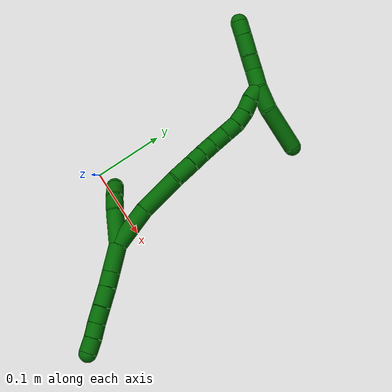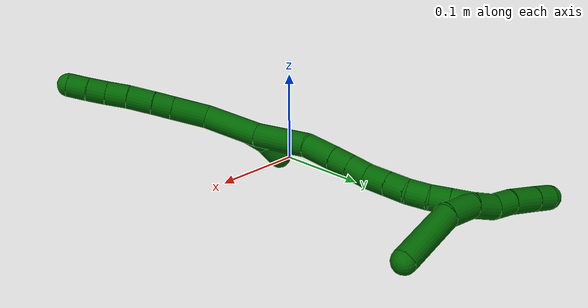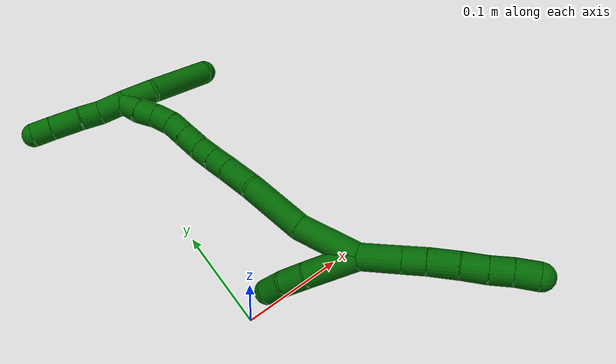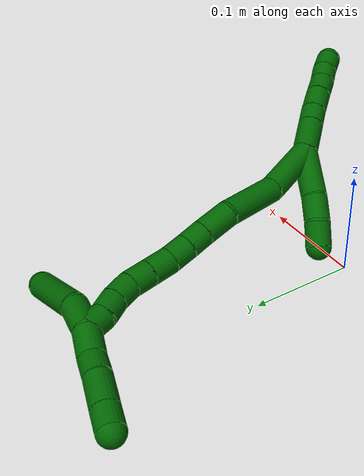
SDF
<sdf version="1.7">
 <world name="default">
  <model name="6">
   <static>0</static>
   <link name="6">
    <collision name="collision-cylinder-e_1_2_8">
     <pose>0.007382 -0.00896 -0.015539 2.61852 0.390406 1.27243</pose>
     <geometry><cylinder><radius>0.0125</radius><length>0.038793</length></cylinder></geometry>
     <surface>
      <friction><ode><mu>1.16</mu><mu2>1.16</mu2><slip1>0</slip1><slip2>0</slip2></ode></friction>
      <contact><ode><kp>1e+06</kp><kd>1</kd><max_vel>0</max_vel><min_depth>0.001</min_depth></ode></contact>
     </surface>
    </collision>
    <visual name="visual-cylinder-e_1_2_8">
     <pose>0.007382 -0.00896 -0.015539 2.61852 0.390406 1.27243</pose>
     <geometry><cylinder><radius>0.0125</radius><length>0.038793</length></cylinder></geometry>
     <material><ambient>0 0.392157 0.003922 1</ambient></material>
    </visual>
    <collision name="collision-cylinder-e_2_8_9">
     <pose>0.018731 -0.022656 -0.039344 2.62137 0.394651 1.28854</pose>
     <geometry><cylinder><radius>0.0125</radius><length>0.020642</length></cylinder></geometry>
     <surface>
      <friction><ode><mu>1.16</mu><mu2>1.16</mu2><slip1>0</slip1><slip2>0</slip2></ode></friction>
      <contact><ode><kp>1e+06</kp><kd>1</kd><max_vel>0</max_vel><min_depth>0.001</min_depth></ode></contact>
     </surface>
    </collision>
    <visual name="visual-cylinder-e_2_8_9">
     <pose>0.018731 -0.022656 -0.039344 2.62137 0.394651 1.28854</pose>
     <geometry><cylinder><radius>0.0125</radius><length>0.020642</length></cylinder></geometry>
     <material><ambient>0 0.392157 0.003922 1</ambient></material>
    </visual>
    <collision name="collision-cylinder-e_3_9_10">
     <pose>0.027416 -0.034093 -0.058172 2.57619 0.36058 1.12076</pose>
     <geometry><cylinder><radius>0.0125</radius><length>0.026734</length></cylinder></geometry>
     <surface>
      <friction><ode><mu>1.16</mu><mu2>1.16</mu2><slip1>0</slip1><slip2>0</slip2></ode></friction>
      <contact><ode><kp>1e+06</kp><kd>1</kd><max_vel>0</max_vel><min_depth>0.001</min_depth></ode></contact>
     </surface>
    </collision>
    <visual name="visual-cylinder-e_3_9_10">
     <pose>0.027416 -0.034093 -0.058172 2.57619 0.36058 1.12076</pose>
     <geometry><cylinder><radius>0.0125</radius><length>0.026734</length></cylinder></geometry>
     <material><ambient>0 0.392157 0.003922 1</ambient></material>
    </visual>
    <collision name="collision-cylinder-e_4_10_11">
     <pose>0.035379 -0.046695 -0.078073 2.57811 0.285854 0.922797</pose>
     <geometry><cylinder><radius>0.0125</radius><length>0.023031</length></cylinder></geometry>
     <surface>
      <friction><ode><mu>1.16</mu><mu2>1.16</mu2><slip1>0</slip1><slip2>0</slip2></ode></friction>
      <contact><ode><kp>1e+06</kp><kd>1</kd><max_vel>0</max_vel><min_depth>0.001</min_depth></ode></contact>
     </surface>
    </collision>
    <visual name="visual-cylinder-e_4_10_11">
     <pose>0.035379 -0.046695 -0.078073 2.57811 0.285854 0.922797</pose>
     <geometry><cylinder><radius>0.0125</radius><length>0.023031</length></cylinder></geometry>
     <material><ambient>0 0.392157 0.003922 1</ambient></material>
    </visual>
    <collision name="collision-cylinder-e_5_11_12">
     <pose>0.041981 -0.057173 -0.095661 2.63504 0.341776 1.17609</pose>
     <geometry><cylinder><radius>0.0125</radius><length>0.020022</length></cylinder></geometry>
     <surface>
      <friction><ode><mu>1.16</mu><mu2>1.16</mu2><slip1>0</slip1><slip2>0</slip2></ode></friction>
      <contact><ode><kp>1e+06</kp><kd>1</kd><max_vel>0</max_vel><min_depth>0.001</min_depth></ode></contact>
     </surface>
    </collision>
    <visual name="visual-cylinder-e_5_11_12">
     <pose>0.041981 -0.057173 -0.095661 2.63504 0.341776 1.17609</pose>
     <geometry><cylinder><radius>0.0125</radius><length>0.020022</length></cylinder></geometry>
     <material><ambient>0 0.392157 0.003922 1</ambient></material>
    </visual>
    <collision name="collision-cylinder-e_6_12_6">
     <pose>0.048645 -0.067359 -0.112002 2.53545 0.324128 0.963514</pose>
     <geometry><cylinder><radius>0.0125</radius><length>0.020778</length></cylinder></geometry>
     <surface>
      <friction><ode><mu>1.16</mu><mu2>1.16</mu2><slip1>0</slip1><slip2>0</slip2></ode></friction>
      <contact><ode><kp>1e+06</kp><kd>1</kd><max_vel>0</max_vel><min_depth>0.001</min_depth></ode></contact>
     </surface>
    </collision>
    <visual name="visual-cylinder-e_6_12_6">
     <pose>0.048645 -0.067359 -0.112002 2.53545 0.324128 0.963514</pose>
     <geometry><cylinder><radius>0.0125</radius><length>0.020778</length></cylinder></geometry>
     <material><ambient>0 0.392157 0.003922 1</ambient></material>
    </visual>
    <collision name="collision-cylinder-e_1_2_13">
     <pose>-0.015109 0.002867 0.020153 -0.141318 -0.638498 0.046783</pose>
     <geometry><cylinder><radius>0.0125</radius><length>0.050701</length></cylinder></geometry>
     <surface>
      <friction><ode><mu>1.16</mu><mu2>1.16</mu2><slip1>0</slip1><slip2>0</slip2></ode></friction>
      <contact><ode><kp>1e+06</kp><kd>1</kd><max_vel>0</max_vel><min_depth>0.001</min_depth></ode></contact>
     </surface>
    </collision>
    <visual name="visual-cylinder-e_1_2_13">
     <pose>-0.015109 0.002867 0.020153 -0.141318 -0.638498 0.046783</pose>
     <geometry><cylinder><radius>0.0125</radius><length>0.050701</length></cylinder></geometry>
     <material><ambient>0 0.392157 0.003922 1</ambient></material>
    </visual>
    <collision name="collision-cylinder-e_2_13_14">
     <pose>-0.039006 0.007537 0.048898 -0.206807 -0.785952 0.085983</pose>
     <geometry><cylinder><radius>0.0125</radius><length>0.024845</length></cylinder></geometry>
     <surface>
      <friction><ode><mu>1.16</mu><mu2>1.16</mu2><slip1>0</slip1><slip2>0</slip2></ode></friction>
      <contact><ode><kp>1e+06</kp><kd>1</kd><max_vel>0</max_vel><min_depth>0.001</min_depth></ode></contact>
     </surface>
    </collision>
    <visual name="visual-cylinder-e_2_13_14">
     <pose>-0.039006 0.007537 0.048898 -0.206807 -0.785952 0.085983</pose>
     <geometry><cylinder><radius>0.0125</radius><length>0.024845</length></cylinder></geometry>
     <material><ambient>0 0.392157 0.003922 1</ambient></material>
    </visual>
    <collision name="collision-cylinder-e_3_14_5">
     <pose>-0.058268 0.011028 0.06357 -0.27091 -1.02859 0.153706</pose>
     <geometry><cylinder><radius>0.0125</radius><length>0.024454</length></cylinder></geometry>
     <surface>
      <friction><ode><mu>1.16</mu><mu2>1.16</mu2><slip1>0</slip1><slip2>0</slip2></ode></friction>
      <contact><ode><kp>1e+06</kp><kd>1</kd><max_vel>0</max_vel><min_depth>0.001</min_depth></ode></contact>
     </surface>
    </collision>
    <visual name="visual-cylinder-e_3_14_5">
     <pose>-0.058268 0.011028 0.06357 -0.27091 -1.02859 0.153706</pose>
     <geometry><cylinder><radius>0.0125</radius><length>0.024454</length></cylinder></geometry>
     <material><ambient>0 0.392157 0.003922 1</ambient></material>
    </visual>
    <collision name="collision-cylinder-e_1_2_15">
     <pose>-0.008386 0.023548 0.017671 -0.927015 -0.277485 0.139365</pose>
     <geometry><cylinder><radius>0.0125</radius><length>0.061224</length></cylinder></geometry>
     <surface>
      <friction><ode><mu>1.16</mu><mu2>1.16</mu2><slip1>0</slip1><slip2>0</slip2></ode></friction>
      <contact><ode><kp>1e+06</kp><kd>1</kd><max_vel>0</max_vel><min_depth>0.001</min_depth></ode></contact>
     </surface>
    </collision>
    <visual name="visual-cylinder-e_1_2_15">
     <pose>-0.008386 0.023548 0.017671 -0.927015 -0.277485 0.139365</pose>
     <geometry><cylinder><radius>0.0125</radius><length>0.061224</length></cylinder></geometry>
     <material><ambient>0 0.392157 0.003922 1</ambient></material>
    </visual>
    <collision name="collision-cylinder-e_2_15_16">
     <pose>-0.017994 0.073276 0.050409 -1.04858 -0.040431 0.023382</pose>
     <geometry><cylinder><radius>0.0125</radius><length>0.060461</length></cylinder></geometry>
     <surface>
      <friction><ode><mu>1.16</mu><mu2>1.16</mu2><slip1>0</slip1><slip2>0</slip2></ode></friction>
      <contact><ode><kp>1e+06</kp><kd>1</kd><max_vel>0</max_vel><min_depth>0.001</min_depth></ode></contact>
     </surface>
    </collision>
    <visual name="visual-cylinder-e_2_15_16">
     <pose>-0.017994 0.073276 0.050409 -1.04858 -0.040431 0.023382</pose>
     <geometry><cylinder><radius>0.0125</radius><length>0.060461</length></cylinder></geometry>
     <material><ambient>0 0.392157 0.003922 1</ambient></material>
    </visual>
    <collision name="collision-cylinder-e_3_16_17">
     <pose>-0.023381 0.113231 0.072123 -1.12123 -0.265906 0.167535</pose>
     <geometry><cylinder><radius>0.0125</radius><length>0.031705</length></cylinder></geometry>
     <surface>
      <friction><ode><mu>1.16</mu><mu2>1.16</mu2><slip1>0</slip1><slip2>0</slip2></ode></friction>
      <contact><ode><kp>1e+06</kp><kd>1</kd><max_vel>0</max_vel><min_depth>0.001</min_depth></ode></contact>
     </surface>
    </collision>
    <visual name="visual-cylinder-e_3_16_17">
     <pose>-0.023381 0.113231 0.072123 -1.12123 -0.265906 0.167535</pose>
     <geometry><cylinder><radius>0.0125</radius><length>0.031705</length></cylinder></geometry>
     <material><ambient>0 0.392157 0.003922 1</ambient></material>
    </visual>
    <collision name="collision-cylinder-e_4_17_18">
     <pose>-0.030497 0.135731 0.083077 -1.11223 -0.294366 0.183777</pose>
     <geometry><cylinder><radius>0.0125</radius><length>0.020333</length></cylinder></geometry>
     <surface>
      <friction><ode><mu>1.16</mu><mu2>1.16</mu2><slip1>0</slip1><slip2>0</slip2></ode></friction>
      <contact><ode><kp>1e+06</kp><kd>1</kd><max_vel>0</max_vel><min_depth>0.001</min_depth></ode></contact>
     </surface>
    </collision>
    <visual name="visual-cylinder-e_4_17_18">
     <pose>-0.030497 0.135731 0.083077 -1.11223 -0.294366 0.183777</pose>
     <geometry><cylinder><radius>0.0125</radius><length>0.020333</length></cylinder></geometry>
     <material><ambient>0 0.392157 0.003922 1</ambient></material>
    </visual>
    <collision name="collision-cylinder-e_5_18_19">
     <pose>-0.036416 0.153519 0.091572 -1.13791 -0.289087 0.185633</pose>
     <geometry><cylinder><radius>0.0125</radius><length>0.020836</length></cylinder></geometry>
     <surface>
      <friction><ode><mu>1.16</mu><mu2>1.16</mu2><slip1>0</slip1><slip2>0</slip2></ode></friction>
      <contact><ode><kp>1e+06</kp><kd>1</kd><max_vel>0</max_vel><min_depth>0.001</min_depth></ode></contact>
     </surface>
    </collision>
    <visual name="visual-cylinder-e_5_18_19">
     <pose>-0.036416 0.153519 0.091572 -1.13791 -0.289087 0.185633</pose>
     <geometry><cylinder><radius>0.0125</radius><length>0.020836</length></cylinder></geometry>
     <material><ambient>0 0.392157 0.003922 1</ambient></material>
    </visual>
    <collision name="collision-cylinder-e_6_19_20">
     <pose>-0.041118 0.173053 0.100647 -1.13416 -0.148809 0.094874</pose>
     <geometry><cylinder><radius>0.0125</radius><length>0.023364</length></cylinder></geometry>
     <surface>
      <friction><ode><mu>1.16</mu><mu2>1.16</mu2><slip1>0</slip1><slip2>0</slip2></ode></friction>
      <contact><ode><kp>1e+06</kp><kd>1</kd><max_vel>0</max_vel><min_depth>0.001</min_depth></ode></contact>
     </surface>
    </collision>
    <visual name="visual-cylinder-e_6_19_20">
     <pose>-0.041118 0.173053 0.100647 -1.13416 -0.148809 0.094874</pose>
     <geometry><cylinder><radius>0.0125</radius><length>0.023364</length></cylinder></geometry>
     <material><ambient>0 0.392157 0.003922 1</ambient></material>
    </visual>
    <collision name="collision-cylinder-e_7_20_21">
     <pose>-0.04439 0.192973 0.109917 -1.13647 -0.146728 0.093782</pose>
     <geometry><cylinder><radius>0.0125</radius><length>0.021064</length></cylinder></geometry>
     <surface>
      <friction><ode><mu>1.16</mu><mu2>1.16</mu2><slip1>0</slip1><slip2>0</slip2></ode></friction>
      <contact><ode><kp>1e+06</kp><kd>1</kd><max_vel>0</max_vel><min_depth>0.001</min_depth></ode></contact>
     </surface>
    </collision>
    <visual name="visual-cylinder-e_7_20_21">
     <pose>-0.04439 0.192973 0.109917 -1.13647 -0.146728 0.093782</pose>
     <geometry><cylinder><radius>0.0125</radius><length>0.021064</length></cylinder></geometry>
     <material><ambient>0 0.392157 0.003922 1</ambient></material>
    </visual>
    <collision name="collision-cylinder-e_8_21_22">
     <pose>-0.047967 0.210316 0.120625 -0.89518 -0.198807 0.095687</pose>
     <geometry><cylinder><radius>0.0125</radius><length>0.020631</length></cylinder></geometry>
     <surface>
      <friction><ode><mu>1.16</mu><mu2>1.16</mu2><slip1>0</slip1><slip2>0</slip2></ode></friction>
      <contact><ode><kp>1e+06</kp><kd>1</kd><max_vel>0</max_vel><min_depth>0.001</min_depth></ode></contact>
     </surface>
    </collision>
    <visual name="visual-cylinder-e_8_21_22">
     <pose>-0.047967 0.210316 0.120625 -0.89518 -0.198807 0.095687</pose>
     <geometry><cylinder><radius>0.0125</radius><length>0.020631</length></cylinder></geometry>
     <material><ambient>0 0.392157 0.003922 1</ambient></material>
    </visual>
    <collision name="collision-cylinder-e_9_22_23">
     <pose>-0.052189 0.224544 0.134528 -0.696409 -0.217656 0.07928</pose>
     <geometry><cylinder><radius>0.0125</radius><length>0.020236</length></cylinder></geometry>
     <surface>
      <friction><ode><mu>1.16</mu><mu2>1.16</mu2><slip1>0</slip1><slip2>0</slip2></ode></friction>
      <contact><ode><kp>1e+06</kp><kd>1</kd><max_vel>0</max_vel><min_depth>0.001</min_depth></ode></contact>
     </surface>
    </collision>
    <visual name="visual-cylinder-e_9_22_23">
     <pose>-0.052189 0.224544 0.134528 -0.696409 -0.217656 0.07928</pose>
     <geometry><cylinder><radius>0.0125</radius><length>0.020236</length></cylinder></geometry>
     <material><ambient>0 0.392157 0.003922 1</ambient></material>
    </visual>
    <collision name="collision-cylinder-e_10_23_1">
     <pose>-0.055403 0.238705 0.148368 -0.895898 -0.102303 0.049193</pose>
     <geometry><cylinder><radius>0.0125</radius><length>0.020146</length></cylinder></geometry>
     <surface>
      <friction><ode><mu>1.16</mu><mu2>1.16</mu2><slip1>0</slip1><slip2>0</slip2></ode></friction>
      <contact><ode><kp>1e+06</kp><kd>1</kd><max_vel>0</max_vel><min_depth>0.001</min_depth></ode></contact>
     </surface>
    </collision>
    <visual name="visual-cylinder-e_10_23_1">
     <pose>-0.055403 0.238705 0.148368 -0.895898 -0.102303 0.049193</pose>
     <geometry><cylinder><radius>0.0125</radius><length>0.020146</length></cylinder></geometry>
     <material><ambient>0 0.392157 0.003922 1</ambient></material>
    </visual>
    <collision name="collision-cylinder-e_1_1_24">
     <pose>-0.062208 0.246705 0.16681 -0.014511 -0.442791 0.003266</pose>
     <geometry><cylinder><radius>0.0125</radius><length>0.026965</length></cylinder></geometry>
     <surface>
      <friction><ode><mu>1.16</mu><mu2>1.16</mu2><slip1>0</slip1><slip2>0</slip2></ode></friction>
      <contact><ode><kp>1e+06</kp><kd>1</kd><max_vel>0</max_vel><min_depth>0.001</min_depth></ode></contact>
     </surface>
    </collision>
    <visual name="visual-cylinder-e_1_1_24">
     <pose>-0.062208 0.246705 0.16681 -0.014511 -0.442791 0.003266</pose>
     <geometry><cylinder><radius>0.0125</radius><length>0.026965</length></cylinder></geometry>
     <material><ambient>0 0.392157 0.003922 1</ambient></material>
    </visual>
    <collision name="collision-cylinder-e_2_24_25">
     <pose>-0.069678 0.246458 0.189595 0.039962 -0.158166 -0.003167</pose>
     <geometry><cylinder><radius>0.0125</radius><length>0.021493</length></cylinder></geometry>
     <surface>
      <friction><ode><mu>1.16</mu><mu2>1.16</mu2><slip1>0</slip1><slip2>0</slip2></ode></friction>
      <contact><ode><kp>1e+06</kp><kd>1</kd><max_vel>0</max_vel><min_depth>0.001</min_depth></ode></contact>
     </surface>
    </collision>
    <visual name="visual-cylinder-e_2_24_25">
     <pose>-0.069678 0.246458 0.189595 0.039962 -0.158166 -0.003167</pose>
     <geometry><cylinder><radius>0.0125</radius><length>0.021493</length></cylinder></geometry>
     <material><ambient>0 0.392157 0.003922 1</ambient></material>
    </visual>
    <collision name="collision-cylinder-e_3_25_26">
     <pose>-0.075597 0.245931 0.214927 0.006992 -0.279464 -0.000983</pose>
     <geometry><cylinder><radius>0.0125</radius><length>0.030646</length></cylinder></geometry>
     <surface>
      <friction><ode><mu>1.16</mu><mu2>1.16</mu2><slip1>0</slip1><slip2>0</slip2></ode></friction>
      <contact><ode><kp>1e+06</kp><kd>1</kd><max_vel>0</max_vel><min_depth>0.001</min_depth></ode></contact>
     </surface>
    </collision>
    <visual name="visual-cylinder-e_3_25_26">
     <pose>-0.075597 0.245931 0.214927 0.006992 -0.279464 -0.000983</pose>
     <geometry><cylinder><radius>0.0125</radius><length>0.030646</length></cylinder></geometry>
     <material><ambient>0 0.392157 0.003922 1</ambient></material>
    </visual>
    <collision name="collision-cylinder-e_4_26_4">
     <pose>-0.08292 0.245625 0.239631 0.02037 -0.300849 -0.003088</pose>
     <geometry><cylinder><radius>0.0125</radius><length>0.020896</length></cylinder></geometry>
     <surface>
      <friction><ode><mu>1.16</mu><mu2>1.16</mu2><slip1>0</slip1><slip2>0</slip2></ode></friction>
      <contact><ode><kp>1e+06</kp><kd>1</kd><max_vel>0</max_vel><min_depth>0.001</min_depth></ode></contact>
     </surface>
    </collision>
    <visual name="visual-cylinder-e_4_26_4">
     <pose>-0.08292 0.245625 0.239631 0.02037 -0.300849 -0.003088</pose>
     <geometry><cylinder><radius>0.0125</radius><length>0.020896</length></cylinder></geometry>
     <material><ambient>0 0.392157 0.003922 1</ambient></material>
    </visual>
    <collision name="collision-cylinder-e_1_1_27">
     <pose>-0.054192 0.249075 0.138698 -2.98306 0.137946 -1.43167</pose>
     <geometry><cylinder><radius>0.0125</radius><length>0.032576</length></cylinder></geometry>
     <surface>
      <friction><ode><mu>1.16</mu><mu2>1.16</mu2><slip1>0</slip1><slip2>0</slip2></ode></friction>
      <contact><ode><kp>1e+06</kp><kd>1</kd><max_vel>0</max_vel><min_depth>0.001</min_depth></ode></contact>
     </surface>
    </collision>
    <visual name="visual-cylinder-e_1_1_27">
     <pose>-0.054192 0.249075 0.138698 -2.98306 0.137946 -1.43167</pose>
     <geometry><cylinder><radius>0.0125</radius><length>0.032576</length></cylinder></geometry>
     <material><ambient>0 0.392157 0.003922 1</ambient></material>
    </visual>
    <collision name="collision-cylinder-e_2_27_3">
     <pose>-0.057288 0.262509 0.09131 -2.8084 -0.158956 0.884692</pose>
     <geometry><cylinder><radius>0.0125</radius><length>0.067424</length></cylinder></geometry>
     <surface>
      <friction><ode><mu>1.16</mu><mu2>1.16</mu2><slip1>0</slip1><slip2>0</slip2></ode></friction>
      <contact><ode><kp>1e+06</kp><kd>1</kd><max_vel>0</max_vel><min_depth>0.001</min_depth></ode></contact>
     </surface>
    </collision>
    <visual name="visual-cylinder-e_2_27_3">
     <pose>-0.057288 0.262509 0.09131 -2.8084 -0.158956 0.884692</pose>
     <geometry><cylinder><radius>0.0125</radius><length>0.067424</length></cylinder></geometry>
     <material><ambient>0 0.392157 0.003922 1</ambient></material>
    </visual>
    <collision name="collision-sphere-3">
     <pose>-0.062624 0.273396 0.059854 0 -0 0</pose>
     <geometry><sphere><radius>0.0125</radius></sphere></geometry>
     <surface>
      <friction><ode><mu>1.16</mu><mu2>1.16</mu2><slip1>0</slip1><slip2>0</slip2></ode></friction>
      <contact><ode><kp>1e+06</kp><kd>1</kd><max_vel>0</max_vel><min_depth>0.001</min_depth></ode></contact>
     </surface>
    </collision>
    <visual name="visual-sphere-3">
     <pose>-0.062624 0.273396 0.059854 0 -0 0</pose>
     <geometry><sphere><radius>0.0125</radius></sphere></geometry>
     <material><ambient>0 0.392157 0.003922 1</ambient></material>
    </visual>
    <collision name="collision-sphere-27">
     <pose>-0.051952 0.251622 0.122767 0 -0 0</pose>
     <geometry><sphere><radius>0.0125</radius></sphere></geometry>
     <surface>
      <friction><ode><mu>1.16</mu><mu2>1.16</mu2><slip1>0</slip1><slip2>0</slip2></ode></friction>
      <contact><ode><kp>1e+06</kp><kd>1</kd><max_vel>0</max_vel><min_depth>0.001</min_depth></ode></contact>
     </surface>
    </collision>
    <visual name="visual-sphere-27">
     <pose>-0.051952 0.251622 0.122767 0 -0 0</pose>
     <geometry><sphere><radius>0.0125</radius></sphere></geometry>
     <material><ambient>0 0.392157 0.003922 1</ambient></material>
    </visual>
    <collision name="collision-sphere-4">
     <pose>-0.086016 0.245421 0.249608 0 -0 0</pose>
     <geometry><sphere><radius>0.0125</radius></sphere></geometry>
     <surface>
      <friction><ode><mu>1.16</mu><mu2>1.16</mu2><slip1>0</slip1><slip2>0</slip2></ode></friction>
      <contact><ode><kp>1e+06</kp><kd>1</kd><max_vel>0</max_vel><min_depth>0.001</min_depth></ode></contact>
     </surface>
    </collision>
    <visual name="visual-sphere-4">
     <pose>-0.086016 0.245421 0.249608 0 -0 0</pose>
     <geometry><sphere><radius>0.0125</radius></sphere></geometry>
     <material><ambient>0 0.392157 0.003922 1</ambient></material>
    </visual>
    <collision name="collision-sphere-26">
     <pose>-0.079824 0.245828 0.229655 0 -0 0</pose>
     <geometry><sphere><radius>0.0125</radius></sphere></geometry>
     <surface>
      <friction><ode><mu>1.16</mu><mu2>1.16</mu2><slip1>0</slip1><slip2>0</slip2></ode></friction>
      <contact><ode><kp>1e+06</kp><kd>1</kd><max_vel>0</max_vel><min_depth>0.001</min_depth></ode></contact>
     </surface>
    </collision>
    <visual name="visual-sphere-26">
     <pose>-0.079824 0.245828 0.229655 0 -0 0</pose>
     <geometry><sphere><radius>0.0125</radius></sphere></geometry>
     <material><ambient>0 0.392157 0.003922 1</ambient></material>
    </visual>
    <collision name="collision-sphere-25">
     <pose>-0.071371 0.246034 0.200199 0 -0 0</pose>
     <geometry><sphere><radius>0.0125</radius></sphere></geometry>
     <surface>
      <friction><ode><mu>1.16</mu><mu2>1.16</mu2><slip1>0</slip1><slip2>0</slip2></ode></friction>
      <contact><ode><kp>1e+06</kp><kd>1</kd><max_vel>0</max_vel><min_depth>0.001</min_depth></ode></contact>
     </surface>
    </collision>
    <visual name="visual-sphere-25">
     <pose>-0.071371 0.246034 0.200199 0 -0 0</pose>
     <geometry><sphere><radius>0.0125</radius></sphere></geometry>
     <material><ambient>0 0.392157 0.003922 1</ambient></material>
    </visual>
    <collision name="collision-sphere-24">
     <pose>-0.067985 0.246882 0.178991 0 -0 0</pose>
     <geometry><sphere><radius>0.0125</radius></sphere></geometry>
     <surface>
      <friction><ode><mu>1.16</mu><mu2>1.16</mu2><slip1>0</slip1><slip2>0</slip2></ode></friction>
      <contact><ode><kp>1e+06</kp><kd>1</kd><max_vel>0</max_vel><min_depth>0.001</min_depth></ode></contact>
     </surface>
    </collision>
    <visual name="visual-sphere-24">
     <pose>-0.067985 0.246882 0.178991 0 -0 0</pose>
     <geometry><sphere><radius>0.0125</radius></sphere></geometry>
     <material><ambient>0 0.392157 0.003922 1</ambient></material>
    </visual>
    <collision name="collision-sphere-1">
     <pose>-0.056432 0.246528 0.154629 0 -0 0</pose>
     <geometry><sphere><radius>0.0125</radius></sphere></geometry>
     <surface>
      <friction><ode><mu>1.16</mu><mu2>1.16</mu2><slip1>0</slip1><slip2>0</slip2></ode></friction>
      <contact><ode><kp>1e+06</kp><kd>1</kd><max_vel>0</max_vel><min_depth>0.001</min_depth></ode></contact>
     </surface>
    </collision>
    <visual name="visual-sphere-1">
     <pose>-0.056432 0.246528 0.154629 0 -0 0</pose>
     <geometry><sphere><radius>0.0125</radius></sphere></geometry>
     <material><ambient>0 0.392157 0.003922 1</ambient></material>
    </visual>
    <collision name="collision-sphere-23">
     <pose>-0.054374 0.230881 0.142107 0 -0 0</pose>
     <geometry><sphere><radius>0.0125</radius></sphere></geometry>
     <surface>
      <friction><ode><mu>1.16</mu><mu2>1.16</mu2><slip1>0</slip1><slip2>0</slip2></ode></friction>
      <contact><ode><kp>1e+06</kp><kd>1</kd><max_vel>0</max_vel><min_depth>0.001</min_depth></ode></contact>
     </surface>
    </collision>
    <visual name="visual-sphere-23">
     <pose>-0.054374 0.230881 0.142107 0 -0 0</pose>
     <geometry><sphere><radius>0.0125</radius></sphere></geometry>
     <material><ambient>0 0.392157 0.003922 1</ambient></material>
    </visual>
    <collision name="collision-sphere-22">
     <pose>-0.050004 0.218207 0.126949 0 -0 0</pose>
     <geometry><sphere><radius>0.0125</radius></sphere></geometry>
     <surface>
      <friction><ode><mu>1.16</mu><mu2>1.16</mu2><slip1>0</slip1><slip2>0</slip2></ode></friction>
      <contact><ode><kp>1e+06</kp><kd>1</kd><max_vel>0</max_vel><min_depth>0.001</min_depth></ode></contact>
     </surface>
    </collision>
    <visual name="visual-sphere-22">
     <pose>-0.050004 0.218207 0.126949 0 -0 0</pose>
     <geometry><sphere><radius>0.0125</radius></sphere></geometry>
     <material><ambient>0 0.392157 0.003922 1</ambient></material>
    </visual>
    <collision name="collision-sphere-21">
     <pose>-0.04593 0.202425 0.114301 0 -0 0</pose>
     <geometry><sphere><radius>0.0125</radius></sphere></geometry>
     <surface>
      <friction><ode><mu>1.16</mu><mu2>1.16</mu2><slip1>0</slip1><slip2>0</slip2></ode></friction>
      <contact><ode><kp>1e+06</kp><kd>1</kd><max_vel>0</max_vel><min_depth>0.001</min_depth></ode></contact>
     </surface>
    </collision>
    <visual name="visual-sphere-21">
     <pose>-0.04593 0.202425 0.114301 0 -0 0</pose>
     <geometry><sphere><radius>0.0125</radius></sphere></geometry>
     <material><ambient>0 0.392157 0.003922 1</ambient></material>
    </visual>
    <collision name="collision-sphere-12">
     <pose>0.045337 -0.061749 -0.103909 0 -0 0</pose>
     <geometry><sphere><radius>0.0125</radius></sphere></geometry>
     <surface>
      <friction><ode><mu>1.16</mu><mu2>1.16</mu2><slip1>0</slip1><slip2>0</slip2></ode></friction>
      <contact><ode><kp>1e+06</kp><kd>1</kd><max_vel>0</max_vel><min_depth>0.001</min_depth></ode></contact>
     </surface>
    </collision>
    <visual name="visual-sphere-12">
     <pose>0.045337 -0.061749 -0.103909 0 -0 0</pose>
     <geometry><sphere><radius>0.0125</radius></sphere></geometry>
     <material><ambient>0 0.392157 0.003922 1</ambient></material>
    </visual>
    <collision name="collision-sphere-11">
     <pose>0.038626 -0.052597 -0.087414 0 -0 0</pose>
     <geometry><sphere><radius>0.0125</radius></sphere></geometry>
     <surface>
      <friction><ode><mu>1.16</mu><mu2>1.16</mu2><slip1>0</slip1><slip2>0</slip2></ode></friction>
      <contact><ode><kp>1e+06</kp><kd>1</kd><max_vel>0</max_vel><min_depth>0.001</min_depth></ode></contact>
     </surface>
    </collision>
    <visual name="visual-sphere-11">
     <pose>0.038626 -0.052597 -0.087414 0 -0 0</pose>
     <geometry><sphere><radius>0.0125</radius></sphere></geometry>
     <material><ambient>0 0.392157 0.003922 1</ambient></material>
    </visual>
    <collision name="collision-sphere-10">
     <pose>0.032132 -0.040794 -0.068733 0 -0 0</pose>
     <geometry><sphere><radius>0.0125</radius></sphere></geometry>
     <surface>
      <friction><ode><mu>1.16</mu><mu2>1.16</mu2><slip1>0</slip1><slip2>0</slip2></ode></friction>
      <contact><ode><kp>1e+06</kp><kd>1</kd><max_vel>0</max_vel><min_depth>0.001</min_depth></ode></contact>
     </surface>
    </collision>
    <visual name="visual-sphere-10">
     <pose>0.032132 -0.040794 -0.068733 0 -0 0</pose>
     <geometry><sphere><radius>0.0125</radius></sphere></geometry>
     <material><ambient>0 0.392157 0.003922 1</ambient></material>
    </visual>
    <collision name="collision-sphere-9">
     <pose>0.0227 -0.027392 -0.047611 0 -0 0</pose>
     <geometry><sphere><radius>0.0125</radius></sphere></geometry>
     <surface>
      <friction><ode><mu>1.16</mu><mu2>1.16</mu2><slip1>0</slip1><slip2>0</slip2></ode></friction>
      <contact><ode><kp>1e+06</kp><kd>1</kd><max_vel>0</max_vel><min_depth>0.001</min_depth></ode></contact>
     </surface>
    </collision>
    <visual name="visual-sphere-9">
     <pose>0.0227 -0.027392 -0.047611 0 -0 0</pose>
     <geometry><sphere><radius>0.0125</radius></sphere></geometry>
     <material><ambient>0 0.392157 0.003922 1</ambient></material>
    </visual>
    <collision name="collision-sphere-2">
     <geometry><sphere><radius>0.0125</radius></sphere></geometry>
     <surface>
      <friction><ode><mu>1.16</mu><mu2>1.16</mu2><slip1>0</slip1><slip2>0</slip2></ode></friction>
      <contact><ode><kp>1e+06</kp><kd>1</kd><max_vel>0</max_vel><min_depth>0.001</min_depth></ode></contact>
     </surface>
    </collision>
    <visual name="visual-sphere-2">
     <geometry><sphere><radius>0.0125</radius></sphere></geometry>
     <material><ambient>0 0.392157 0.003922 1</ambient></material>
    </visual>
    <collision name="collision-sphere-19">
     <pose>-0.039386 0.162584 0.095761 0 -0 0</pose>
     <geometry><sphere><radius>0.0125</radius></sphere></geometry>
     <surface>
      <friction><ode><mu>1.16</mu><mu2>1.16</mu2><slip1>0</slip1><slip2>0</slip2></ode></friction>
      <contact><ode><kp>1e+06</kp><kd>1</kd><max_vel>0</max_vel><min_depth>0.001</min_depth></ode></contact>
     </surface>
    </collision>
    <visual name="visual-sphere-19">
     <pose>-0.039386 0.162584 0.095761 0 -0 0</pose>
     <geometry><sphere><radius>0.0125</radius></sphere></geometry>
     <material><ambient>0 0.392157 0.003922 1</ambient></material>
    </visual>
    <collision name="collision-sphere-8">
     <pose>0.014763 -0.017921 -0.031077 0 -0 0</pose>
     <geometry><sphere><radius>0.0125</radius></sphere></geometry>
     <surface>
      <friction><ode><mu>1.16</mu><mu2>1.16</mu2><slip1>0</slip1><slip2>0</slip2></ode></friction>
      <contact><ode><kp>1e+06</kp><kd>1</kd><max_vel>0</max_vel><min_depth>0.001</min_depth></ode></contact>
     </surface>
    </collision>
    <visual name="visual-sphere-8">
     <pose>0.014763 -0.017921 -0.031077 0 -0 0</pose>
     <geometry><sphere><radius>0.0125</radius></sphere></geometry>
     <material><ambient>0 0.392157 0.003922 1</ambient></material>
    </visual>
    <collision name="collision-sphere-6">
     <pose>0.051954 -0.07297 -0.120096 0 -0 0</pose>
     <geometry><sphere><radius>0.0125</radius></sphere></geometry>
     <surface>
      <friction><ode><mu>1.16</mu><mu2>1.16</mu2><slip1>0</slip1><slip2>0</slip2></ode></friction>
      <contact><ode><kp>1e+06</kp><kd>1</kd><max_vel>0</max_vel><min_depth>0.001</min_depth></ode></contact>
     </surface>
    </collision>
    <visual name="visual-sphere-6">
     <pose>0.051954 -0.07297 -0.120096 0 -0 0</pose>
     <geometry><sphere><radius>0.0125</radius></sphere></geometry>
     <material><ambient>0 0.392157 0.003922 1</ambient></material>
    </visual>
    <collision name="collision-sphere-13">
     <pose>-0.030217 0.005734 0.040306 0 -0 0</pose>
     <geometry><sphere><radius>0.0125</radius></sphere></geometry>
     <surface>
      <friction><ode><mu>1.16</mu><mu2>1.16</mu2><slip1>0</slip1><slip2>0</slip2></ode></friction>
      <contact><ode><kp>1e+06</kp><kd>1</kd><max_vel>0</max_vel><min_depth>0.001</min_depth></ode></contact>
     </surface>
    </collision>
    <visual name="visual-sphere-13">
     <pose>-0.030217 0.005734 0.040306 0 -0 0</pose>
     <geometry><sphere><radius>0.0125</radius></sphere></geometry>
     <material><ambient>0 0.392157 0.003922 1</ambient></material>
    </visual>
    <collision name="collision-sphere-14">
     <pose>-0.047795 0.00934 0.05749 0 -0 0</pose>
     <geometry><sphere><radius>0.0125</radius></sphere></geometry>
     <surface>
      <friction><ode><mu>1.16</mu><mu2>1.16</mu2><slip1>0</slip1><slip2>0</slip2></ode></friction>
      <contact><ode><kp>1e+06</kp><kd>1</kd><max_vel>0</max_vel><min_depth>0.001</min_depth></ode></contact>
     </surface>
    </collision>
    <visual name="visual-sphere-14">
     <pose>-0.047795 0.00934 0.05749 0 -0 0</pose>
     <geometry><sphere><radius>0.0125</radius></sphere></geometry>
     <material><ambient>0 0.392157 0.003922 1</ambient></material>
    </visual>
    <collision name="collision-sphere-5">
     <pose>-0.068742 0.012717 0.069649 0 -0 0</pose>
     <geometry><sphere><radius>0.0125</radius></sphere></geometry>
     <surface>
      <friction><ode><mu>1.16</mu><mu2>1.16</mu2><slip1>0</slip1><slip2>0</slip2></ode></friction>
      <contact><ode><kp>1e+06</kp><kd>1</kd><max_vel>0</max_vel><min_depth>0.001</min_depth></ode></contact>
     </surface>
    </collision>
    <visual name="visual-sphere-5">
     <pose>-0.068742 0.012717 0.069649 0 -0 0</pose>
     <geometry><sphere><radius>0.0125</radius></sphere></geometry>
     <material><ambient>0 0.392157 0.003922 1</ambient></material>
    </visual>
    <collision name="collision-sphere-15">
     <pose>-0.016772 0.047096 0.035343 0 -0 0</pose>
     <geometry><sphere><radius>0.0125</radius></sphere></geometry>
     <surface>
      <friction><ode><mu>1.16</mu><mu2>1.16</mu2><slip1>0</slip1><slip2>0</slip2></ode></friction>
      <contact><ode><kp>1e+06</kp><kd>1</kd><max_vel>0</max_vel><min_depth>0.001</min_depth></ode></contact>
     </surface>
    </collision>
    <visual name="visual-sphere-15">
     <pose>-0.016772 0.047096 0.035343 0 -0 0</pose>
     <geometry><sphere><radius>0.0125</radius></sphere></geometry>
     <material><ambient>0 0.392157 0.003922 1</ambient></material>
    </visual>
    <collision name="collision-sphere-16">
     <pose>-0.019215 0.099455 0.065476 0 -0 0</pose>
     <geometry><sphere><radius>0.0125</radius></sphere></geometry>
     <surface>
      <friction><ode><mu>1.16</mu><mu2>1.16</mu2><slip1>0</slip1><slip2>0</slip2></ode></friction>
      <contact><ode><kp>1e+06</kp><kd>1</kd><max_vel>0</max_vel><min_depth>0.001</min_depth></ode></contact>
     </surface>
    </collision>
    <visual name="visual-sphere-16">
     <pose>-0.019215 0.099455 0.065476 0 -0 0</pose>
     <geometry><sphere><radius>0.0125</radius></sphere></geometry>
     <material><ambient>0 0.392157 0.003922 1</ambient></material>
    </visual>
    <collision name="collision-sphere-17">
     <pose>-0.027547 0.127007 0.07877 0 -0 0</pose>
     <geometry><sphere><radius>0.0125</radius></sphere></geometry>
     <surface>
      <friction><ode><mu>1.16</mu><mu2>1.16</mu2><slip1>0</slip1><slip2>0</slip2></ode></friction>
      <contact><ode><kp>1e+06</kp><kd>1</kd><max_vel>0</max_vel><min_depth>0.001</min_depth></ode></contact>
     </surface>
    </collision>
    <visual name="visual-sphere-17">
     <pose>-0.027547 0.127007 0.07877 0 -0 0</pose>
     <geometry><sphere><radius>0.0125</radius></sphere></geometry>
     <material><ambient>0 0.392157 0.003922 1</ambient></material>
    </visual>
    <collision name="collision-sphere-18">
     <pose>-0.033446 0.144455 0.087383 0 -0 0</pose>
     <geometry><sphere><radius>0.0125</radius></sphere></geometry>
     <surface>
      <friction><ode><mu>1.16</mu><mu2>1.16</mu2><slip1>0</slip1><slip2>0</slip2></ode></friction>
      <contact><ode><kp>1e+06</kp><kd>1</kd><max_vel>0</max_vel><min_depth>0.001</min_depth></ode></contact>
     </surface>
    </collision>
    <visual name="visual-sphere-18">
     <pose>-0.033446 0.144455 0.087383 0 -0 0</pose>
     <geometry><sphere><radius>0.0125</radius></sphere></geometry>
     <material><ambient>0 0.392157 0.003922 1</ambient></material>
    </visual>
    <collision name="collision-sphere-20">
     <pose>-0.04285 0.183522 0.105533 0 -0 0</pose>
     <geometry><sphere><radius>0.0125</radius></sphere></geometry>
     <surface>
      <friction><ode><mu>1.16</mu><mu2>1.16</mu2><slip1>0</slip1><slip2>0</slip2></ode></friction>
      <contact><ode><kp>1e+06</kp><kd>1</kd><max_vel>0</max_vel><min_depth>0.001</min_depth></ode></contact>
     </surface>
    </collision>
    <visual name="visual-sphere-20">
     <pose>-0.04285 0.183522 0.105533 0 -0 0</pose>
     <geometry><sphere><radius>0.0125</radius></sphere></geometry>
     <material><ambient>0 0.392157 0.003922 1</ambient></material>
    </visual>
    <inertial>
     <pose>-0.027626 0.110544 0.06467 0 -0 0</pose>
     <mass>0.75</mass>
     <inertia><ixx>0.00013</ixx><ixy>0</ixy><ixz>0</ixz><iyy>9.3e-05</iyy><iyz>0</iyz><izz>-2.1e-05</izz></inertia>
    </inertial>
   </link>
   <pose>0.098577 -0.025251 0.069499 -0.109009 -1.41633 -0.205997</pose>
  </model>
 </world>
</sdf>
